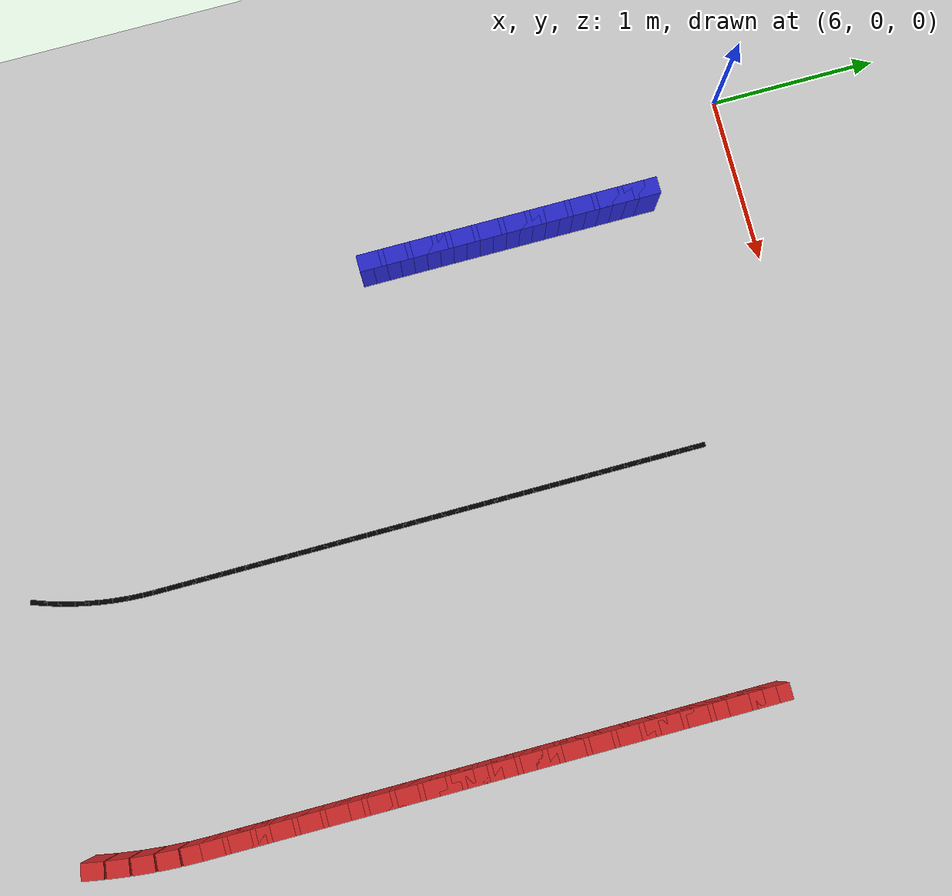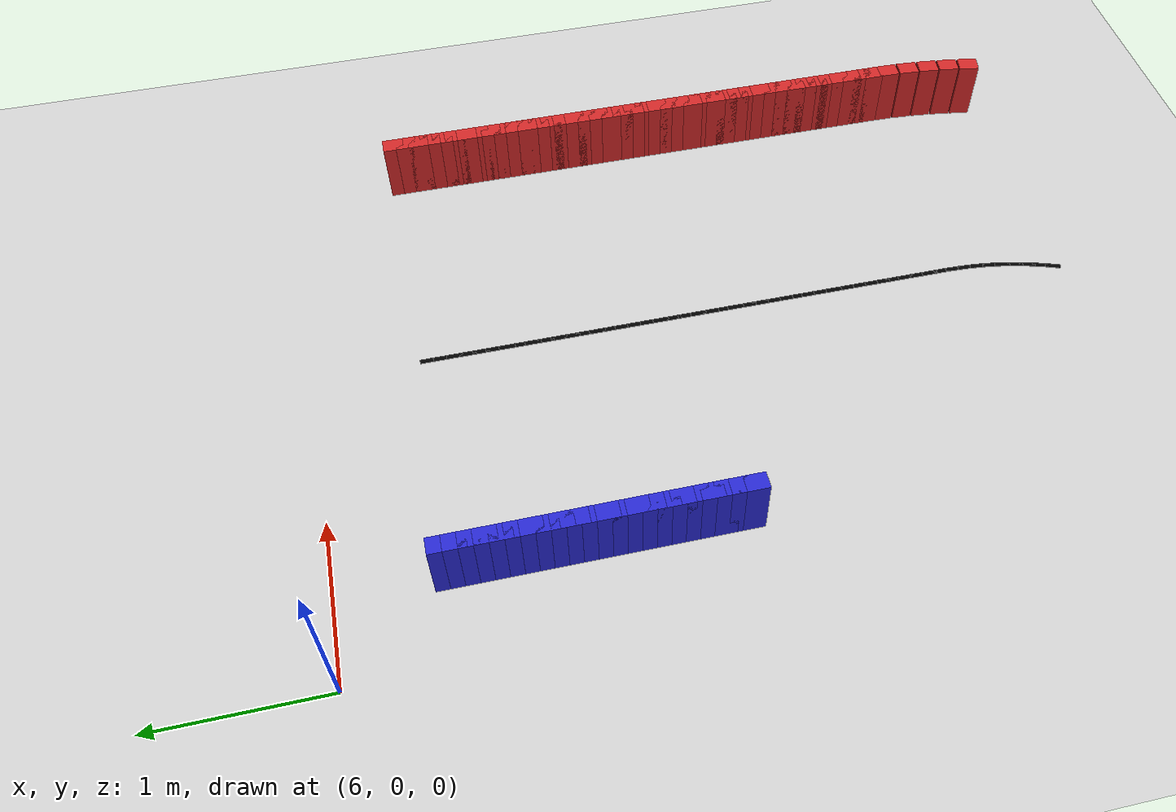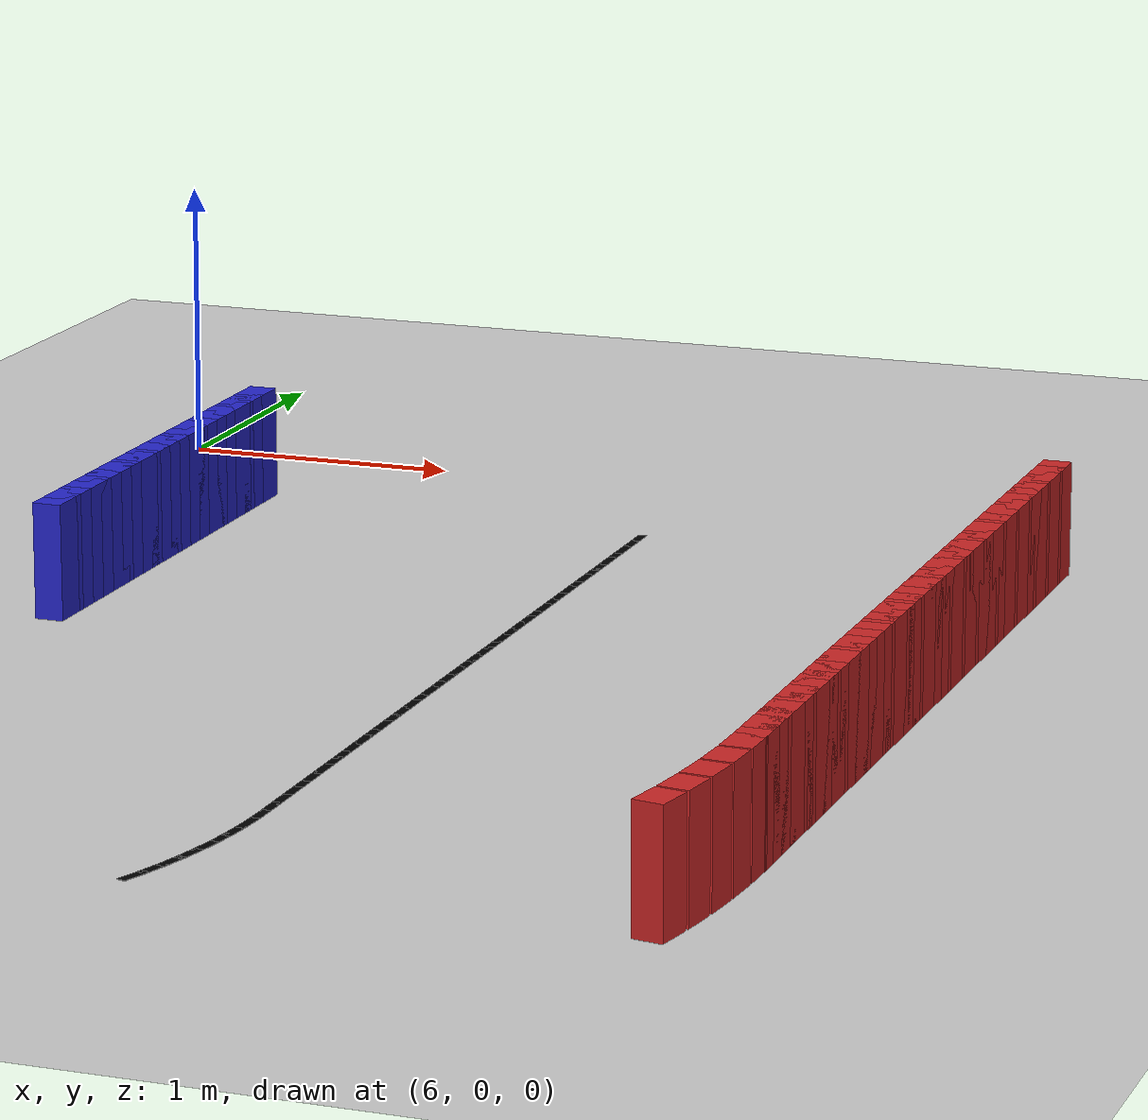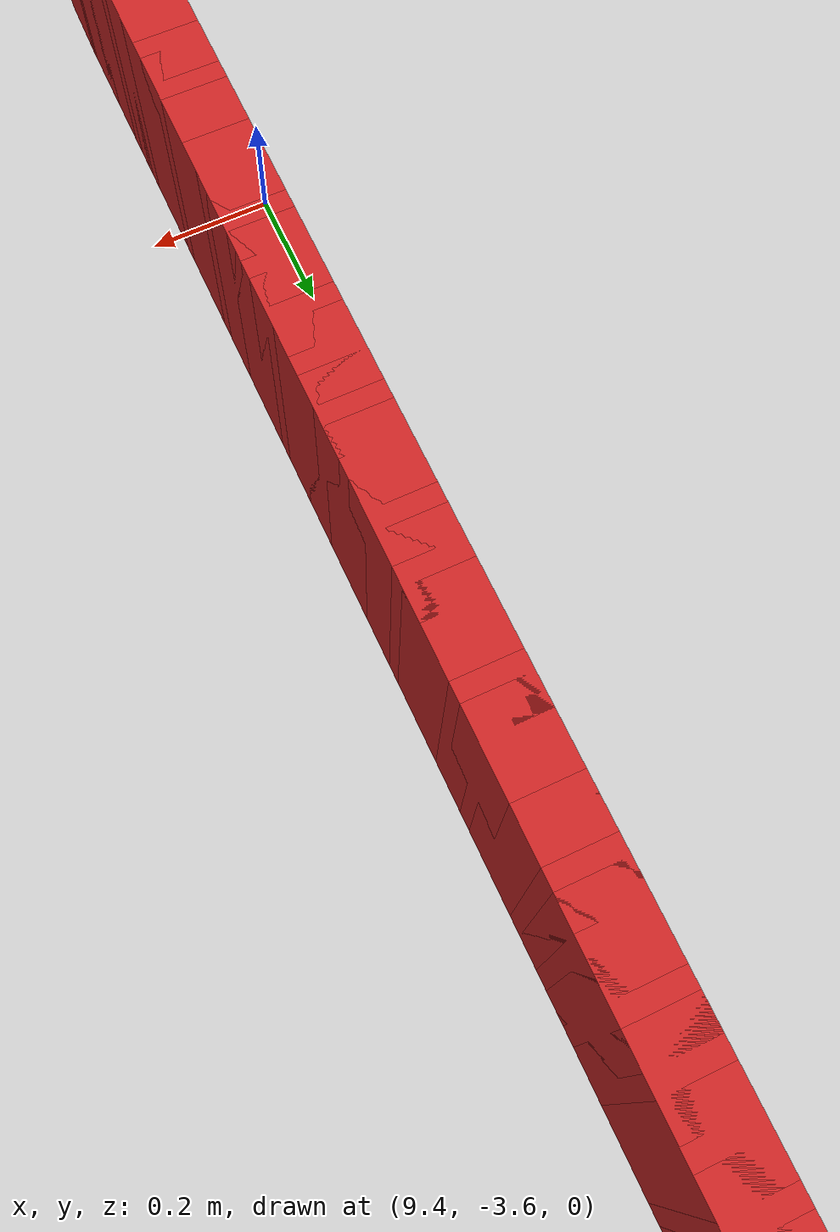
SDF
<sdf version="1.6">
 <world name="new_race_track">
  <include><uri>model://ground_plane</uri></include>
  <include><uri>model://sun</uri></include>
  <model name="iw_417">
   <static>true</static>
   <pose>6.5000 -2.2800 0.200 0 0 1.5708</pose>
   <link name="l">
    <collision name="c"><geometry><box><size>0.1300 0.1 0.4</size></box></geometry></collision>
    <visual name="v">
     <geometry><box><size>0.1300 0.1 0.4</size></box></geometry>
     <material><ambient>0.15 0.15 0.8 1</ambient><diffuse>0.15 0.15 0.8 1</diffuse></material>
    </visual>
   </link>
  </model>
  <model name="iw_418">
   <static>true</static>
   <pose>6.5000 -2.2000 0.200 0 0 1.5708</pose>
   <link name="l">
    <collision name="c"><geometry><box><size>0.1300 0.1 0.4</size></box></geometry></collision>
    <visual name="v">
     <geometry><box><size>0.1300 0.1 0.4</size></box></geometry>
     <material><ambient>0.15 0.15 0.8 1</ambient><diffuse>0.15 0.15 0.8 1</diffuse></material>
    </visual>
   </link>
  </model>
  <model name="iw_419">
   <static>true</static>
   <pose>6.5000 -2.1200 0.200 0 0 1.5708</pose>
   <link name="l">
    <collision name="c"><geometry><box><size>0.1300 0.1 0.4</size></box></geometry></collision>
    <visual name="v">
     <geometry><box><size>0.1300 0.1 0.4</size></box></geometry>
     <material><ambient>0.15 0.15 0.8 1</ambient><diffuse>0.15 0.15 0.8 1</diffuse></material>
    </visual>
   </link>
  </model>
  <model name="iw_420">
   <static>true</static>
   <pose>6.5000 -2.0400 0.200 0 0 1.5708</pose>
   <link name="l">
    <collision name="c"><geometry><box><size>0.1300 0.1 0.4</size></box></geometry></collision>
    <visual name="v">
     <geometry><box><size>0.1300 0.1 0.4</size></box></geometry>
     <material><ambient>0.15 0.15 0.8 1</ambient><diffuse>0.15 0.15 0.8 1</diffuse></material>
    </visual>
   </link>
  </model>
  <model name="iw_421">
   <static>true</static>
   <pose>6.5000 -1.9600 0.200 0 0 1.5708</pose>
   <link name="l">
    <collision name="c"><geometry><box><size>0.1300 0.1 0.4</size></box></geometry></collision>
    <visual name="v">
     <geometry><box><size>0.1300 0.1 0.4</size></box></geometry>
     <material><ambient>0.15 0.15 0.8 1</ambient><diffuse>0.15 0.15 0.8 1</diffuse></material>
    </visual>
   </link>
  </model>
  <model name="iw_422">
   <static>true</static>
   <pose>6.5000 -1.8800 0.200 0 0 1.5708</pose>
   <link name="l">
    <collision name="c"><geometry><box><size>0.1300 0.1 0.4</size></box></geometry></collision>
    <visual name="v">
     <geometry><box><size>0.1300 0.1 0.4</size></box></geometry>
     <material><ambient>0.15 0.15 0.8 1</ambient><diffuse>0.15 0.15 0.8 1</diffuse></material>
    </visual>
   </link>
  </model>
  <model name="iw_423">
   <static>true</static>
   <pose>6.5000 -1.8000 0.200 0 0 1.5708</pose>
   <link name="l">
    <collision name="c"><geometry><box><size>0.1300 0.1 0.4</size></box></geometry></collision>
    <visual name="v">
     <geometry><box><size>0.1300 0.1 0.4</size></box></geometry>
     <material><ambient>0.15 0.15 0.8 1</ambient><diffuse>0.15 0.15 0.8 1</diffuse></material>
    </visual>
   </link>
  </model>
  <model name="iw_424">
   <static>true</static>
   <pose>6.5000 -1.7200 0.200 0 0 1.5708</pose>
   <link name="l">
    <collision name="c"><geometry><box><size>0.1300 0.1 0.4</size></box></geometry></collision>
    <visual name="v">
     <geometry><box><size>0.1300 0.1 0.4</size></box></geometry>
     <material><ambient>0.15 0.15 0.8 1</ambient><diffuse>0.15 0.15 0.8 1</diffuse></material>
    </visual>
   </link>
  </model>
  <model name="iw_425">
   <static>true</static>
   <pose>6.5000 -1.6400 0.200 0 0 1.5708</pose>
   <link name="l">
    <collision name="c"><geometry><box><size>0.1300 0.1 0.4</size></box></geometry></collision>
    <visual name="v">
     <geometry><box><size>0.1300 0.1 0.4</size></box></geometry>
     <material><ambient>0.15 0.15 0.8 1</ambient><diffuse>0.15 0.15 0.8 1</diffuse></material>
    </visual>
   </link>
  </model>
  <model name="iw_426">
   <static>true</static>
   <pose>6.5000 -1.5600 0.200 0 0 1.5708</pose>
   <link name="l">
    <collision name="c"><geometry><box><size>0.1300 0.1 0.4</size></box></geometry></collision>
    <visual name="v">
     <geometry><box><size>0.1300 0.1 0.4</size></box></geometry>
     <material><ambient>0.15 0.15 0.8 1</ambient><diffuse>0.15 0.15 0.8 1</diffuse></material>
    </visual>
   </link>
  </model>
  <model name="iw_427">
   <static>true</static>
   <pose>6.5000 -1.4800 0.200 0 0 1.5708</pose>
   <link name="l">
    <collision name="c"><geometry><box><size>0.1300 0.1 0.4</size></box></geometry></collision>
    <visual name="v">
     <geometry><box><size>0.1300 0.1 0.4</size></box></geometry>
     <material><ambient>0.15 0.15 0.8 1</ambient><diffuse>0.15 0.15 0.8 1</diffuse></material>
    </visual>
   </link>
  </model>
  <model name="iw_428">
   <static>true</static>
   <pose>6.5000 -1.4000 0.200 0 0 1.5708</pose>
   <link name="l">
    <collision name="c"><geometry><box><size>0.1300 0.1 0.4</size></box></geometry></collision>
    <visual name="v">
     <geometry><box><size>0.1300 0.1 0.4</size></box></geometry>
     <material><ambient>0.15 0.15 0.8 1</ambient><diffuse>0.15 0.15 0.8 1</diffuse></material>
    </visual>
   </link>
  </model>
  <model name="iw_429">
   <static>true</static>
   <pose>6.5000 -1.3200 0.200 0 0 1.5708</pose>
   <link name="l">
    <collision name="c"><geometry><box><size>0.1300 0.1 0.4</size></box></geometry></collision>
    <visual name="v">
     <geometry><box><size>0.1300 0.1 0.4</size></box></geometry>
     <material><ambient>0.15 0.15 0.8 1</ambient><diffuse>0.15 0.15 0.8 1</diffuse></material>
    </visual>
   </link>
  </model>
  <model name="iw_430">
   <static>true</static>
   <pose>6.5000 -1.2400 0.200 0 0 1.5708</pose>
   <link name="l">
    <collision name="c"><geometry><box><size>0.1300 0.1 0.4</size></box></geometry></collision>
    <visual name="v">
     <geometry><box><size>0.1300 0.1 0.4</size></box></geometry>
     <material><ambient>0.15 0.15 0.8 1</ambient><diffuse>0.15 0.15 0.8 1</diffuse></material>
    </visual>
   </link>
  </model>
  <model name="iw_431">
   <static>true</static>
   <pose>6.5000 -1.1600 0.200 0 0 1.5708</pose>
   <link name="l">
    <collision name="c"><geometry><box><size>0.1300 0.1 0.4</size></box></geometry></collision>
    <visual name="v">
     <geometry><box><size>0.1300 0.1 0.4</size></box></geometry>
     <material><ambient>0.15 0.15 0.8 1</ambient><diffuse>0.15 0.15 0.8 1</diffuse></material>
    </visual>
   </link>
  </model>
  <model name="iw_432">
   <static>true</static>
   <pose>6.5000 -1.0800 0.200 0 0 1.5708</pose>
   <link name="l">
    <collision name="c"><geometry><box><size>0.1300 0.1 0.4</size></box></geometry></collision>
    <visual name="v">
     <geometry><box><size>0.1300 0.1 0.4</size></box></geometry>
     <material><ambient>0.15 0.15 0.8 1</ambient><diffuse>0.15 0.15 0.8 1</diffuse></material>
    </visual>
   </link>
  </model>
  <model name="iw_433">
   <static>true</static>
   <pose>6.5000 -1.0000 0.200 0 0 1.5708</pose>
   <link name="l">
    <collision name="c"><geometry><box><size>0.1300 0.1 0.4</size></box></geometry></collision>
    <visual name="v">
     <geometry><box><size>0.1300 0.1 0.4</size></box></geometry>
     <material><ambient>0.15 0.15 0.8 1</ambient><diffuse>0.15 0.15 0.8 1</diffuse></material>
    </visual>
   </link>
  </model>
  <model name="iw_434">
   <static>true</static>
   <pose>6.5000 -0.9200 0.200 0 0 1.5708</pose>
   <link name="l">
    <collision name="c"><geometry><box><size>0.1300 0.1 0.4</size></box></geometry></collision>
    <visual name="v">
     <geometry><box><size>0.1300 0.1 0.4</size></box></geometry>
     <material><ambient>0.15 0.15 0.8 1</ambient><diffuse>0.15 0.15 0.8 1</diffuse></material>
    </visual>
   </link>
  </model>
  <model name="iw_435">
   <static>true</static>
   <pose>6.5000 -0.8400 0.200 0 0 1.5708</pose>
   <link name="l">
    <collision name="c"><geometry><box><size>0.1300 0.1 0.4</size></box></geometry></collision>
    <visual name="v">
     <geometry><box><size>0.1300 0.1 0.4</size></box></geometry>
     <material><ambient>0.15 0.15 0.8 1</ambient><diffuse>0.15 0.15 0.8 1</diffuse></material>
    </visual>
   </link>
  </model>
  <model name="iw_436">
   <static>true</static>
   <pose>6.5000 -0.7600 0.200 0 0 1.5708</pose>
   <link name="l">
    <collision name="c"><geometry><box><size>0.1300 0.1 0.4</size></box></geometry></collision>
    <visual name="v">
     <geometry><box><size>0.1300 0.1 0.4</size></box></geometry>
     <material><ambient>0.15 0.15 0.8 1</ambient><diffuse>0.15 0.15 0.8 1</diffuse></material>
    </visual>
   </link>
  </model>
  <model name="iw_437">
   <static>true</static>
   <pose>6.5000 -0.6800 0.200 0 0 1.5708</pose>
   <link name="l">
    <collision name="c"><geometry><box><size>0.1300 0.1 0.4</size></box></geometry></collision>
    <visual name="v">
     <geometry><box><size>0.1300 0.1 0.4</size></box></geometry>
     <material><ambient>0.15 0.15 0.8 1</ambient><diffuse>0.15 0.15 0.8 1</diffuse></material>
    </visual>
   </link>
  </model>
  <model name="iw_438">
   <static>true</static>
   <pose>6.5000 -0.6000 0.200 0 0 1.5708</pose>
   <link name="l">
    <collision name="c"><geometry><box><size>0.1300 0.1 0.4</size></box></geometry></collision>
    <visual name="v">
     <geometry><box><size>0.1300 0.1 0.4</size></box></geometry>
     <material><ambient>0.15 0.15 0.8 1</ambient><diffuse>0.15 0.15 0.8 1</diffuse></material>
    </visual>
   </link>
  </model>
  <model name="ow_391">
   <static>true</static>
   <pose>9.4423 -4.6308 0.200 0 0 1.3896</pose>
   <link name="l">
    <collision name="c"><geometry><box><size>0.1305 0.1 0.4</size></box></geometry></collision>
    <visual name="v">
     <geometry><box><size>0.1305 0.1 0.4</size></box></geometry>
     <material><ambient>0.8 0.15 0.15 1</ambient><diffuse>0.8 0.15 0.15 1</diffuse></material>
    </visual>
   </link>
  </model>
  <model name="ow_392">
   <static>true</static>
   <pose>9.4649 -4.4917 0.200 0 0 1.4298</pose>
   <link name="l">
    <collision name="c"><geometry><box><size>0.1305 0.1 0.4</size></box></geometry></collision>
    <visual name="v">
     <geometry><box><size>0.1305 0.1 0.4</size></box></geometry>
     <material><ambient>0.8 0.15 0.15 1</ambient><diffuse>0.8 0.15 0.15 1</diffuse></material>
    </visual>
   </link>
  </model>
  <model name="ow_393">
   <static>true</static>
   <pose>9.4819 -4.3518 0.200 0 0 1.4701</pose>
   <link name="l">
    <collision name="c"><geometry><box><size>0.1305 0.1 0.4</size></box></geometry></collision>
    <visual name="v">
     <geometry><box><size>0.1305 0.1 0.4</size></box></geometry>
     <material><ambient>0.8 0.15 0.15 1</ambient><diffuse>0.8 0.15 0.15 1</diffuse></material>
    </visual>
   </link>
  </model>
  <model name="ow_394">
   <static>true</static>
   <pose>9.4932 -4.2113 0.200 0 0 1.5104</pose>
   <link name="l">
    <collision name="c"><geometry><box><size>0.1305 0.1 0.4</size></box></geometry></collision>
    <visual name="v">
     <geometry><box><size>0.1305 0.1 0.4</size></box></geometry>
     <material><ambient>0.8 0.15 0.15 1</ambient><diffuse>0.8 0.15 0.15 1</diffuse></material>
    </visual>
   </link>
  </model>
  <model name="ow_395">
   <static>true</static>
   <pose>9.4989 -4.0705 0.200 0 0 1.5507</pose>
   <link name="l">
    <collision name="c"><geometry><box><size>0.1305 0.1 0.4</size></box></geometry></collision>
    <visual name="v">
     <geometry><box><size>0.1305 0.1 0.4</size></box></geometry>
     <material><ambient>0.8 0.15 0.15 1</ambient><diffuse>0.8 0.15 0.15 1</diffuse></material>
    </visual>
   </link>
  </model>
  <model name="ow_396">
   <static>true</static>
   <pose>9.5000 -3.9600 0.200 0 0 1.5708</pose>
   <link name="l">
    <collision name="c"><geometry><box><size>0.1300 0.1 0.4</size></box></geometry></collision>
    <visual name="v">
     <geometry><box><size>0.1300 0.1 0.4</size></box></geometry>
     <material><ambient>0.8 0.15 0.15 1</ambient><diffuse>0.8 0.15 0.15 1</diffuse></material>
    </visual>
   </link>
  </model>
  <model name="ow_397">
   <static>true</static>
   <pose>9.5000 -3.8800 0.200 0 0 1.5708</pose>
   <link name="l">
    <collision name="c"><geometry><box><size>0.1300 0.1 0.4</size></box></geometry></collision>
    <visual name="v">
     <geometry><box><size>0.1300 0.1 0.4</size></box></geometry>
     <material><ambient>0.8 0.15 0.15 1</ambient><diffuse>0.8 0.15 0.15 1</diffuse></material>
    </visual>
   </link>
  </model>
  <model name="ow_398">
   <static>true</static>
   <pose>9.5000 -3.8000 0.200 0 0 1.5708</pose>
   <link name="l">
    <collision name="c"><geometry><box><size>0.1300 0.1 0.4</size></box></geometry></collision>
    <visual name="v">
     <geometry><box><size>0.1300 0.1 0.4</size></box></geometry>
     <material><ambient>0.8 0.15 0.15 1</ambient><diffuse>0.8 0.15 0.15 1</diffuse></material>
    </visual>
   </link>
  </model>
  <model name="ow_399">
   <static>true</static>
   <pose>9.5000 -3.7200 0.200 0 0 1.5708</pose>
   <link name="l">
    <collision name="c"><geometry><box><size>0.1300 0.1 0.4</size></box></geometry></collision>
    <visual name="v">
     <geometry><box><size>0.1300 0.1 0.4</size></box></geometry>
     <material><ambient>0.8 0.15 0.15 1</ambient><diffuse>0.8 0.15 0.15 1</diffuse></material>
    </visual>
   </link>
  </model>
  <model name="ow_400">
   <static>true</static>
   <pose>9.5000 -3.6400 0.200 0 0 1.5708</pose>
   <link name="l">
    <collision name="c"><geometry><box><size>0.1300 0.1 0.4</size></box></geometry></collision>
    <visual name="v">
     <geometry><box><size>0.1300 0.1 0.4</size></box></geometry>
     <material><ambient>0.8 0.15 0.15 1</ambient><diffuse>0.8 0.15 0.15 1</diffuse></material>
    </visual>
   </link>
  </model>
  <model name="ow_401">
   <static>true</static>
   <pose>9.5000 -3.5600 0.200 0 0 1.5708</pose>
   <link name="l">
    <collision name="c"><geometry><box><size>0.1300 0.1 0.4</size></box></geometry></collision>
    <visual name="v">
     <geometry><box><size>0.1300 0.1 0.4</size></box></geometry>
     <material><ambient>0.8 0.15 0.15 1</ambient><diffuse>0.8 0.15 0.15 1</diffuse></material>
    </visual>
   </link>
  </model>
  <model name="ow_402">
   <static>true</static>
   <pose>9.5000 -3.4800 0.200 0 0 1.5708</pose>
   <link name="l">
    <collision name="c"><geometry><box><size>0.1300 0.1 0.4</size></box></geometry></collision>
    <visual name="v">
     <geometry><box><size>0.1300 0.1 0.4</size></box></geometry>
     <material><ambient>0.8 0.15 0.15 1</ambient><diffuse>0.8 0.15 0.15 1</diffuse></material>
    </visual>
   </link>
  </model>
  <model name="ow_403">
   <static>true</static>
   <pose>9.5000 -3.4000 0.200 0 0 1.5708</pose>
   <link name="l">
    <collision name="c"><geometry><box><size>0.1300 0.1 0.4</size></box></geometry></collision>
    <visual name="v">
     <geometry><box><size>0.1300 0.1 0.4</size></box></geometry>
     <material><ambient>0.8 0.15 0.15 1</ambient><diffuse>0.8 0.15 0.15 1</diffuse></material>
    </visual>
   </link>
  </model>
  <model name="ow_404">
   <static>true</static>
   <pose>9.5000 -3.3200 0.200 0 0 1.5708</pose>
   <link name="l">
    <collision name="c"><geometry><box><size>0.1300 0.1 0.4</size></box></geometry></collision>
    <visual name="v">
     <geometry><box><size>0.1300 0.1 0.4</size></box></geometry>
     <material><ambient>0.8 0.15 0.15 1</ambient><diffuse>0.8 0.15 0.15 1</diffuse></material>
    </visual>
   </link>
  </model>
  <model name="ow_405">
   <static>true</static>
   <pose>9.5000 -3.2400 0.200 0 0 1.5708</pose>
   <link name="l">
    <collision name="c"><geometry><box><size>0.1300 0.1 0.4</size></box></geometry></collision>
    <visual name="v">
     <geometry><box><size>0.1300 0.1 0.4</size></box></geometry>
     <material><ambient>0.8 0.15 0.15 1</ambient><diffuse>0.8 0.15 0.15 1</diffuse></material>
    </visual>
   </link>
  </model>
  <model name="ow_406">
   <static>true</static>
   <pose>9.5000 -3.1600 0.200 0 0 1.5708</pose>
   <link name="l">
    <collision name="c"><geometry><box><size>0.1300 0.1 0.4</size></box></geometry></collision>
    <visual name="v">
     <geometry><box><size>0.1300 0.1 0.4</size></box></geometry>
     <material><ambient>0.8 0.15 0.15 1</ambient><diffuse>0.8 0.15 0.15 1</diffuse></material>
    </visual>
   </link>
  </model>
  <model name="ow_407">
   <static>true</static>
   <pose>9.5000 -3.0800 0.200 0 0 1.5708</pose>
   <link name="l">
    <collision name="c"><geometry><box><size>0.1300 0.1 0.4</size></box></geometry></collision>
    <visual name="v">
     <geometry><box><size>0.1300 0.1 0.4</size></box></geometry>
     <material><ambient>0.8 0.15 0.15 1</ambient><diffuse>0.8 0.15 0.15 1</diffuse></material>
    </visual>
   </link>
  </model>
  <model name="ow_408">
   <static>true</static>
   <pose>9.5000 -3.0000 0.200 0 0 1.5708</pose>
   <link name="l">
    <collision name="c"><geometry><box><size>0.1300 0.1 0.4</size></box></geometry></collision>
    <visual name="v">
     <geometry><box><size>0.1300 0.1 0.4</size></box></geometry>
     <material><ambient>0.8 0.15 0.15 1</ambient><diffuse>0.8 0.15 0.15 1</diffuse></material>
    </visual>
   </link>
  </model>
  <model name="ow_409">
   <static>true</static>
   <pose>9.5000 -2.9200 0.200 0 0 1.5708</pose>
   <link name="l">
    <collision name="c"><geometry><box><size>0.1300 0.1 0.4</size></box></geometry></collision>
    <visual name="v">
     <geometry><box><size>0.1300 0.1 0.4</size></box></geometry>
     <material><ambient>0.8 0.15 0.15 1</ambient><diffuse>0.8 0.15 0.15 1</diffuse></material>
    </visual>
   </link>
  </model>
  <model name="ow_410">
   <static>true</static>
   <pose>9.5000 -2.8400 0.200 0 0 1.5708</pose>
   <link name="l">
    <collision name="c"><geometry><box><size>0.1300 0.1 0.4</size></box></geometry></collision>
    <visual name="v">
     <geometry><box><size>0.1300 0.1 0.4</size></box></geometry>
     <material><ambient>0.8 0.15 0.15 1</ambient><diffuse>0.8 0.15 0.15 1</diffuse></material>
    </visual>
   </link>
  </model>
  <model name="ow_411">
   <static>true</static>
   <pose>9.5000 -2.7600 0.200 0 0 1.5708</pose>
   <link name="l">
    <collision name="c"><geometry><box><size>0.1300 0.1 0.4</size></box></geometry></collision>
    <visual name="v">
     <geometry><box><size>0.1300 0.1 0.4</size></box></geometry>
     <material><ambient>0.8 0.15 0.15 1</ambient><diffuse>0.8 0.15 0.15 1</diffuse></material>
    </visual>
   </link>
  </model>
  <model name="ow_412">
   <static>true</static>
   <pose>9.5000 -2.6800 0.200 0 0 1.5708</pose>
   <link name="l">
    <collision name="c"><geometry><box><size>0.1300 0.1 0.4</size></box></geometry></collision>
    <visual name="v">
     <geometry><box><size>0.1300 0.1 0.4</size></box></geometry>
     <material><ambient>0.8 0.15 0.15 1</ambient><diffuse>0.8 0.15 0.15 1</diffuse></material>
    </visual>
   </link>
  </model>
  <model name="ow_413">
   <static>true</static>
   <pose>9.5000 -2.6000 0.200 0 0 1.5708</pose>
   <link name="l">
    <collision name="c"><geometry><box><size>0.1300 0.1 0.4</size></box></geometry></collision>
    <visual name="v">
     <geometry><box><size>0.1300 0.1 0.4</size></box></geometry>
     <material><ambient>0.8 0.15 0.15 1</ambient><diffuse>0.8 0.15 0.15 1</diffuse></material>
    </visual>
   </link>
  </model>
  <model name="ow_414">
   <static>true</static>
   <pose>9.5000 -2.5200 0.200 0 0 1.5708</pose>
   <link name="l">
    <collision name="c"><geometry><box><size>0.1300 0.1 0.4</size></box></geometry></collision>
    <visual name="v">
     <geometry><box><size>0.1300 0.1 0.4</size></box></geometry>
     <material><ambient>0.8 0.15 0.15 1</ambient><diffuse>0.8 0.15 0.15 1</diffuse></material>
    </visual>
   </link>
  </model>
  <model name="ow_415">
   <static>true</static>
   <pose>9.5000 -2.4400 0.200 0 0 1.5708</pose>
   <link name="l">
    <collision name="c"><geometry><box><size>0.1300 0.1 0.4</size></box></geometry></collision>
    <visual name="v">
     <geometry><box><size>0.1300 0.1 0.4</size></box></geometry>
     <material><ambient>0.8 0.15 0.15 1</ambient><diffuse>0.8 0.15 0.15 1</diffuse></material>
    </visual>
   </link>
  </model>
  <model name="ow_416">
   <static>true</static>
   <pose>9.5000 -2.3600 0.200 0 0 1.5708</pose>
   <link name="l">
    <collision name="c"><geometry><box><size>0.1300 0.1 0.4</size></box></geometry></collision>
    <visual name="v">
     <geometry><box><size>0.1300 0.1 0.4</size></box></geometry>
     <material><ambient>0.8 0.15 0.15 1</ambient><diffuse>0.8 0.15 0.15 1</diffuse></material>
    </visual>
   </link>
  </model>
  <model name="ow_417">
   <static>true</static>
   <pose>9.5000 -2.2800 0.200 0 0 1.5708</pose>
   <link name="l">
    <collision name="c"><geometry><box><size>0.1300 0.1 0.4</size></box></geometry></collision>
    <visual name="v">
     <geometry><box><size>0.1300 0.1 0.4</size></box></geometry>
     <material><ambient>0.8 0.15 0.15 1</ambient><diffuse>0.8 0.15 0.15 1</diffuse></material>
    </visual>
   </link>
  </model>
  <model name="ow_418">
   <static>true</static>
   <pose>9.5000 -2.2000 0.200 0 0 1.5708</pose>
   <link name="l">
    <collision name="c"><geometry><box><size>0.1300 0.1 0.4</size></box></geometry></collision>
    <visual name="v">
     <geometry><box><size>0.1300 0.1 0.4</size></box></geometry>
     <material><ambient>0.8 0.15 0.15 1</ambient><diffuse>0.8 0.15 0.15 1</diffuse></material>
    </visual>
   </link>
  </model>
  <model name="ow_419">
   <static>true</static>
   <pose>9.5000 -2.1200 0.200 0 0 1.5708</pose>
   <link name="l">
    <collision name="c"><geometry><box><size>0.1300 0.1 0.4</size></box></geometry></collision>
    <visual name="v">
     <geometry><box><size>0.1300 0.1 0.4</size></box></geometry>
     <material><ambient>0.8 0.15 0.15 1</ambient><diffuse>0.8 0.15 0.15 1</diffuse></material>
    </visual>
   </link>
  </model>
  <model name="ow_420">
   <static>true</static>
   <pose>9.5000 -2.0400 0.200 0 0 1.5708</pose>
   <link name="l">
    <collision name="c"><geometry><box><size>0.1300 0.1 0.4</size></box></geometry></collision>
    <visual name="v">
     <geometry><box><size>0.1300 0.1 0.4</size></box></geometry>
     <material><ambient>0.8 0.15 0.15 1</ambient><diffuse>0.8 0.15 0.15 1</diffuse></material>
    </visual>
   </link>
  </model>
  <model name="ow_421">
   <static>true</static>
   <pose>9.5000 -1.9600 0.200 0 0 1.5708</pose>
   <link name="l">
    <collision name="c"><geometry><box><size>0.1300 0.1 0.4</size></box></geometry></collision>
    <visual name="v">
     <geometry><box><size>0.1300 0.1 0.4</size></box></geometry>
     <material><ambient>0.8 0.15 0.15 1</ambient><diffuse>0.8 0.15 0.15 1</diffuse></material>
    </visual>
   </link>
  </model>
  <model name="ow_422">
   <static>true</static>
   <pose>9.5000 -1.8800 0.200 0 0 1.5708</pose>
   <link name="l">
    <collision name="c"><geometry><box><size>0.1300 0.1 0.4</size></box></geometry></collision>
    <visual name="v">
     <geometry><box><size>0.1300 0.1 0.4</size></box></geometry>
     <material><ambient>0.8 0.15 0.15 1</ambient><diffuse>0.8 0.15 0.15 1</diffuse></material>
    </visual>
   </link>
  </model>
  <model name="ow_423">
   <static>true</static>
   <pose>9.5000 -1.8000 0.200 0 0 1.5708</pose>
   <link name="l">
    <collision name="c"><geometry><box><size>0.1300 0.1 0.4</size></box></geometry></collision>
    <visual name="v">
     <geometry><box><size>0.1300 0.1 0.4</size></box></geometry>
     <material><ambient>0.8 0.15 0.15 1</ambient><diffuse>0.8 0.15 0.15 1</diffuse></material>
    </visual>
   </link>
  </model>
  <model name="ow_424">
   <static>true</static>
   <pose>9.5000 -1.7200 0.200 0 0 1.5708</pose>
   <link name="l">
    <collision name="c"><geometry><box><size>0.1300 0.1 0.4</size></box></geometry></collision>
    <visual name="v">
     <geometry><box><size>0.1300 0.1 0.4</size></box></geometry>
     <material><ambient>0.8 0.15 0.15 1</ambient><diffuse>0.8 0.15 0.15 1</diffuse></material>
    </visual>
   </link>
  </model>
  <model name="ow_425">
   <static>true</static>
   <pose>9.5000 -1.6400 0.200 0 0 1.5708</pose>
   <link name="l">
    <collision name="c"><geometry><box><size>0.1300 0.1 0.4</size></box></geometry></collision>
    <visual name="v">
     <geometry><box><size>0.1300 0.1 0.4</size></box></geometry>
     <material><ambient>0.8 0.15 0.15 1</ambient><diffuse>0.8 0.15 0.15 1</diffuse></material>
    </visual>
   </link>
  </model>
  <model name="ow_426">
   <static>true</static>
   <pose>9.5000 -1.5600 0.200 0 0 1.5708</pose>
   <link name="l">
    <collision name="c"><geometry><box><size>0.1300 0.1 0.4</size></box></geometry></collision>
    <visual name="v">
     <geometry><box><size>0.1300 0.1 0.4</size></box></geometry>
     <material><ambient>0.8 0.15 0.15 1</ambient><diffuse>0.8 0.15 0.15 1</diffuse></material>
    </visual>
   </link>
  </model>
  <model name="ow_427">
   <static>true</static>
   <pose>9.5000 -1.4800 0.200 0 0 1.5708</pose>
   <link name="l">
    <collision name="c"><geometry><box><size>0.1300 0.1 0.4</size></box></geometry></collision>
    <visual name="v">
     <geometry><box><size>0.1300 0.1 0.4</size></box></geometry>
     <material><ambient>0.8 0.15 0.15 1</ambient><diffuse>0.8 0.15 0.15 1</diffuse></material>
    </visual>
   </link>
  </model>
  <model name="ow_428">
   <static>true</static>
   <pose>9.5000 -1.4000 0.200 0 0 1.5708</pose>
   <link name="l">
    <collision name="c"><geometry><box><size>0.1300 0.1 0.4</size></box></geometry></collision>
    <visual name="v">
     <geometry><box><size>0.1300 0.1 0.4</size></box></geometry>
     <material><ambient>0.8 0.15 0.15 1</ambient><diffuse>0.8 0.15 0.15 1</diffuse></material>
    </visual>
   </link>
  </model>
  <model name="ow_429">
   <static>true</static>
   <pose>9.5000 -1.3200 0.200 0 0 1.5708</pose>
   <link name="l">
    <collision name="c"><geometry><box><size>0.1300 0.1 0.4</size></box></geometry></collision>
    <visual name="v">
     <geometry><box><size>0.1300 0.1 0.4</size></box></geometry>
     <material><ambient>0.8 0.15 0.15 1</ambient><diffuse>0.8 0.15 0.15 1</diffuse></material>
    </visual>
   </link>
  </model>
  <model name="ow_430">
   <static>true</static>
   <pose>9.5000 -1.2400 0.200 0 0 1.5708</pose>
   <link name="l">
    <collision name="c"><geometry><box><size>0.1300 0.1 0.4</size></box></geometry></collision>
    <visual name="v">
     <geometry><box><size>0.1300 0.1 0.4</size></box></geometry>
     <material><ambient>0.8 0.15 0.15 1</ambient><diffuse>0.8 0.15 0.15 1</diffuse></material>
    </visual>
   </link>
  </model>
  <model name="ow_431">
   <static>true</static>
   <pose>9.5000 -1.1600 0.200 0 0 1.5708</pose>
   <link name="l">
    <collision name="c"><geometry><box><size>0.1300 0.1 0.4</size></box></geometry></collision>
    <visual name="v">
     <geometry><box><size>0.1300 0.1 0.4</size></box></geometry>
     <material><ambient>0.8 0.15 0.15 1</ambient><diffuse>0.8 0.15 0.15 1</diffuse></material>
    </visual>
   </link>
  </model>
  <model name="ow_432">
   <static>true</static>
   <pose>9.5000 -1.0800 0.200 0 0 1.5708</pose>
   <link name="l">
    <collision name="c"><geometry><box><size>0.1300 0.1 0.4</size></box></geometry></collision>
    <visual name="v">
     <geometry><box><size>0.1300 0.1 0.4</size></box></geometry>
     <material><ambient>0.8 0.15 0.15 1</ambient><diffuse>0.8 0.15 0.15 1</diffuse></material>
    </visual>
   </link>
  </model>
  <model name="ow_433">
   <static>true</static>
   <pose>9.5000 -1.0000 0.200 0 0 1.5708</pose>
   <link name="l">
    <collision name="c"><geometry><box><size>0.1300 0.1 0.4</size></box></geometry></collision>
    <visual name="v">
     <geometry><box><size>0.1300 0.1 0.4</size></box></geometry>
     <material><ambient>0.8 0.15 0.15 1</ambient><diffuse>0.8 0.15 0.15 1</diffuse></material>
    </visual>
   </link>
  </model>
  <model name="ow_434">
   <static>true</static>
   <pose>9.5000 -0.9200 0.200 0 0 1.5708</pose>
   <link name="l">
    <collision name="c"><geometry><box><size>0.1300 0.1 0.4</size></box></geometry></collision>
    <visual name="v">
     <geometry><box><size>0.1300 0.1 0.4</size></box></geometry>
     <material><ambient>0.8 0.15 0.15 1</ambient><diffuse>0.8 0.15 0.15 1</diffuse></material>
    </visual>
   </link>
  </model>
  <model name="ow_435">
   <static>true</static>
   <pose>9.5000 -0.8400 0.200 0 0 1.5708</pose>
   <link name="l">
    <collision name="c"><geometry><box><size>0.1300 0.1 0.4</size></box></geometry></collision>
    <visual name="v">
     <geometry><box><size>0.1300 0.1 0.4</size></box></geometry>
     <material><ambient>0.8 0.15 0.15 1</ambient><diffuse>0.8 0.15 0.15 1</diffuse></material>
    </visual>
   </link>
  </model>
  <model name="ow_436">
   <static>true</static>
   <pose>9.5000 -0.7600 0.200 0 0 1.5708</pose>
   <link name="l">
    <collision name="c"><geometry><box><size>0.1300 0.1 0.4</size></box></geometry></collision>
    <visual name="v">
     <geometry><box><size>0.1300 0.1 0.4</size></box></geometry>
     <material><ambient>0.8 0.15 0.15 1</ambient><diffuse>0.8 0.15 0.15 1</diffuse></material>
    </visual>
   </link>
  </model>
  <model name="ow_437">
   <static>true</static>
   <pose>9.5000 -0.6800 0.200 0 0 1.5708</pose>
   <link name="l">
    <collision name="c"><geometry><box><size>0.1300 0.1 0.4</size></box></geometry></collision>
    <visual name="v">
     <geometry><box><size>0.1300 0.1 0.4</size></box></geometry>
     <material><ambient>0.8 0.15 0.15 1</ambient><diffuse>0.8 0.15 0.15 1</diffuse></material>
    </visual>
   </link>
  </model>
  <model name="line_387">
   <static>true</static>
   <pose>7.8836 -4.6713 0.002 0 0 1.2284</pose>
   <link name="l">
    <visual name="v">
     <geometry><box><size>0.1005 0.03 0.002</size></box></geometry>
     <material><ambient>0 0 0 1</ambient><diffuse>0 0 0 1</diffuse></material>
    </visual>
   </link>
  </model>
  <model name="line_388">
   <static>true</static>
   <pose>7.9091 -4.5949 0.002 0 0 1.2687</pose>
   <link name="l">
    <visual name="v">
     <geometry><box><size>0.1005 0.03 0.002</size></box></geometry>
     <material><ambient>0 0 0 1</ambient><diffuse>0 0 0 1</diffuse></material>
    </visual>
   </link>
  </model>
  <model name="line_389">
   <static>true</static>
   <pose>7.9315 -4.5175 0.002 0 0 1.3090</pose>
   <link name="l">
    <visual name="v">
     <geometry><box><size>0.1005 0.03 0.002</size></box></geometry>
     <material><ambient>0 0 0 1</ambient><diffuse>0 0 0 1</diffuse></material>
    </visual>
   </link>
  </model>
  <model name="line_390">
   <static>true</static>
   <pose>7.9507 -4.4393 0.002 0 0 1.3493</pose>
   <link name="l">
    <visual name="v">
     <geometry><box><size>0.1005 0.03 0.002</size></box></geometry>
     <material><ambient>0 0 0 1</ambient><diffuse>0 0 0 1</diffuse></material>
    </visual>
   </link>
  </model>
  <model name="line_391">
   <static>true</static>
   <pose>7.9668 -4.3604 0.002 0 0 1.3896</pose>
   <link name="l">
    <visual name="v">
     <geometry><box><size>0.1005 0.03 0.002</size></box></geometry>
     <material><ambient>0 0 0 1</ambient><diffuse>0 0 0 1</diffuse></material>
    </visual>
   </link>
  </model>
  <model name="line_392">
   <static>true</static>
   <pose>7.9798 -4.2809 0.002 0 0 1.4298</pose>
   <link name="l">
    <visual name="v">
     <geometry><box><size>0.1005 0.03 0.002</size></box></geometry>
     <material><ambient>0 0 0 1</ambient><diffuse>0 0 0 1</diffuse></material>
    </visual>
   </link>
  </model>
  <model name="line_393">
   <static>true</static>
   <pose>7.9895 -4.2010 0.002 0 0 1.4701</pose>
   <link name="l">
    <visual name="v">
     <geometry><box><size>0.1005 0.03 0.002</size></box></geometry>
     <material><ambient>0 0 0 1</ambient><diffuse>0 0 0 1</diffuse></material>
    </visual>
   </link>
  </model>
  <model name="line_394">
   <static>true</static>
   <pose>7.9959 -4.1207 0.002 0 0 1.5104</pose>
   <link name="l">
    <visual name="v">
     <geometry><box><size>0.1005 0.03 0.002</size></box></geometry>
     <material><ambient>0 0 0 1</ambient><diffuse>0 0 0 1</diffuse></material>
    </visual>
   </link>
  </model>
  <model name="line_395">
   <static>true</static>
   <pose>7.9992 -4.0403 0.002 0 0 1.5507</pose>
   <link name="l">
    <visual name="v">
     <geometry><box><size>0.1005 0.03 0.002</size></box></geometry>
     <material><ambient>0 0 0 1</ambient><diffuse>0 0 0 1</diffuse></material>
    </visual>
   </link>
  </model>
  <model name="line_396">
   <static>true</static>
   <pose>8.0000 -3.9600 0.002 0 0 1.5708</pose>
   <link name="l">
    <visual name="v">
     <geometry><box><size>0.1000 0.03 0.002</size></box></geometry>
     <material><ambient>0 0 0 1</ambient><diffuse>0 0 0 1</diffuse></material>
    </visual>
   </link>
  </model>
  <model name="line_397">
   <static>true</static>
   <pose>8.0000 -3.8800 0.002 0 0 1.5708</pose>
   <link name="l">
    <visual name="v">
     <geometry><box><size>0.1000 0.03 0.002</size></box></geometry>
     <material><ambient>0 0 0 1</ambient><diffuse>0 0 0 1</diffuse></material>
    </visual>
   </link>
  </model>
  <model name="line_398">
   <static>true</static>
   <pose>8.0000 -3.8000 0.002 0 0 1.5708</pose>
   <link name="l">
    <visual name="v">
     <geometry><box><size>0.1000 0.03 0.002</size></box></geometry>
     <material><ambient>0 0 0 1</ambient><diffuse>0 0 0 1</diffuse></material>
    </visual>
   </link>
  </model>
  <model name="line_399">
   <static>true</static>
   <pose>8.0000 -3.7200 0.002 0 0 1.5708</pose>
   <link name="l">
    <visual name="v">
     <geometry><box><size>0.1000 0.03 0.002</size></box></geometry>
     <material><ambient>0 0 0 1</ambient><diffuse>0 0 0 1</diffuse></material>
    </visual>
   </link>
  </model>
  <model name="line_400">
   <static>true</static>
   <pose>8.0000 -3.6400 0.002 0 0 1.5708</pose>
   <link name="l">
    <visual name="v">
     <geometry><box><size>0.1000 0.03 0.002</size></box></geometry>
     <material><ambient>0 0 0 1</ambient><diffuse>0 0 0 1</diffuse></material>
    </visual>
   </link>
  </model>
  <model name="line_401">
   <static>true</static>
   <pose>8.0000 -3.5600 0.002 0 0 1.5708</pose>
   <link name="l">
    <visual name="v">
     <geometry><box><size>0.1000 0.03 0.002</size></box></geometry>
     <material><ambient>0 0 0 1</ambient><diffuse>0 0 0 1</diffuse></material>
    </visual>
   </link>
  </model>
  <model name="line_402">
   <static>true</static>
   <pose>8.0000 -3.4800 0.002 0 0 1.5708</pose>
   <link name="l">
    <visual name="v">
     <geometry><box><size>0.1000 0.03 0.002</size></box></geometry>
     <material><ambient>0 0 0 1</ambient><diffuse>0 0 0 1</diffuse></material>
    </visual>
   </link>
  </model>
  <model name="line_403">
   <static>true</static>
   <pose>8.0000 -3.4000 0.002 0 0 1.5708</pose>
   <link name="l">
    <visual name="v">
     <geometry><box><size>0.1000 0.03 0.002</size></box></geometry>
     <material><ambient>0 0 0 1</ambient><diffuse>0 0 0 1</diffuse></material>
    </visual>
   </link>
  </model>
  <model name="line_404">
   <static>true</static>
   <pose>8.0000 -3.3200 0.002 0 0 1.5708</pose>
   <link name="l">
    <visual name="v">
     <geometry><box><size>0.1000 0.03 0.002</size></box></geometry>
     <material><ambient>0 0 0 1</ambient><diffuse>0 0 0 1</diffuse></material>
    </visual>
   </link>
  </model>
  <model name="line_405">
   <static>true</static>
   <pose>8.0000 -3.2400 0.002 0 0 1.5708</pose>
   <link name="l">
    <visual name="v">
     <geometry><box><size>0.1000 0.03 0.002</size></box></geometry>
     <material><ambient>0 0 0 1</ambient><diffuse>0 0 0 1</diffuse></material>
    </visual>
   </link>
  </model>
  <model name="line_406">
   <static>true</static>
   <pose>8.0000 -3.1600 0.002 0 0 1.5708</pose>
   <link name="l">
    <visual name="v">
     <geometry><box><size>0.1000 0.03 0.002</size></box></geometry>
     <material><ambient>0 0 0 1</ambient><diffuse>0 0 0 1</diffuse></material>
    </visual>
   </link>
  </model>
  <model name="line_407">
   <static>true</static>
   <pose>8.0000 -3.0800 0.002 0 0 1.5708</pose>
   <link name="l">
    <visual name="v">
     <geometry><box><size>0.1000 0.03 0.002</size></box></geometry>
     <material><ambient>0 0 0 1</ambient><diffuse>0 0 0 1</diffuse></material>
    </visual>
   </link>
  </model>
  <model name="line_408">
   <static>true</static>
   <pose>8.0000 -3.0000 0.002 0 0 1.5708</pose>
   <link name="l">
    <visual name="v">
     <geometry><box><size>0.1000 0.03 0.002</size></box></geometry>
     <material><ambient>0 0 0 1</ambient><diffuse>0 0 0 1</diffuse></material>
    </visual>
   </link>
  </model>
  <model name="line_409">
   <static>true</static>
   <pose>8.0000 -2.9200 0.002 0 0 1.5708</pose>
   <link name="l">
    <visual name="v">
     <geometry><box><size>0.1000 0.03 0.002</size></box></geometry>
     <material><ambient>0 0 0 1</ambient><diffuse>0 0 0 1</diffuse></material>
    </visual>
   </link>
  </model>
  <model name="line_410">
   <static>true</static>
   <pose>8.0000 -2.8400 0.002 0 0 1.5708</pose>
   <link name="l">
    <visual name="v">
     <geometry><box><size>0.1000 0.03 0.002</size></box></geometry>
     <material><ambient>0 0 0 1</ambient><diffuse>0 0 0 1</diffuse></material>
    </visual>
   </link>
  </model>
  <model name="line_411">
   <static>true</static>
   <pose>8.0000 -2.7600 0.002 0 0 1.5708</pose>
   <link name="l">
    <visual name="v">
     <geometry><box><size>0.1000 0.03 0.002</size></box></geometry>
     <material><ambient>0 0 0 1</ambient><diffuse>0 0 0 1</diffuse></material>
    </visual>
   </link>
  </model>
  <model name="line_412">
   <static>true</static>
   <pose>8.0000 -2.6800 0.002 0 0 1.5708</pose>
   <link name="l">
    <visual name="v">
     <geometry><box><size>0.1000 0.03 0.002</size></box></geometry>
     <material><ambient>0 0 0 1</ambient><diffuse>0 0 0 1</diffuse></material>
    </visual>
   </link>
  </model>
  <model name="line_413">
   <static>true</static>
   <pose>8.0000 -2.6000 0.002 0 0 1.5708</pose>
   <link name="l">
    <visual name="v">
     <geometry><box><size>0.1000 0.03 0.002</size></box></geometry>
     <material><ambient>0 0 0 1</ambient><diffuse>0 0 0 1</diffuse></material>
    </visual>
   </link>
  </model>
  <model name="line_414">
   <static>true</static>
   <pose>8.0000 -2.5200 0.002 0 0 1.5708</pose>
   <link name="l">
    <visual name="v">
     <geometry><box><size>0.1000 0.03 0.002</size></box></geometry>
     <material><ambient>0 0 0 1</ambient><diffuse>0 0 0 1</diffuse></material>
    </visual>
   </link>
  </model>
  <model name="line_415">
   <static>true</static>
   <pose>8.0000 -2.4400 0.002 0 0 1.5708</pose>
   <link name="l">
    <visual name="v">
     <geometry><box><size>0.1000 0.03 0.002</size></box></geometry>
     <material><ambient>0 0 0 1</ambient><diffuse>0 0 0 1</diffuse></material>
    </visual>
   </link>
  </model>
  <model name="line_416">
   <static>true</static>
   <pose>8.0000 -2.3600 0.002 0 0 1.5708</pose>
   <link name="l">
    <visual name="v">
     <geometry><box><size>0.1000 0.03 0.002</size></box></geometry>
     <material><ambient>0 0 0 1</ambient><diffuse>0 0 0 1</diffuse></material>
    </visual>
   </link>
  </model>
  <model name="line_417">
   <static>true</static>
   <pose>8.0000 -2.2800 0.002 0 0 1.5708</pose>
   <link name="l">
    <visual name="v">
     <geometry><box><size>0.1000 0.03 0.002</size></box></geometry>
     <material><ambient>0 0 0 1</ambient><diffuse>0 0 0 1</diffuse></material>
    </visual>
   </link>
  </model>
  <model name="line_418">
   <static>true</static>
   <pose>8.0000 -2.2000 0.002 0 0 1.5708</pose>
   <link name="l">
    <visual name="v">
     <geometry><box><size>0.1000 0.03 0.002</size></box></geometry>
     <material><ambient>0 0 0 1</ambient><diffuse>0 0 0 1</diffuse></material>
    </visual>
   </link>
  </model>
  <model name="line_419">
   <static>true</static>
   <pose>8.0000 -2.1200 0.002 0 0 1.5708</pose>
   <link name="l">
    <visual name="v">
     <geometry><box><size>0.1000 0.03 0.002</size></box></geometry>
     <material><ambient>0 0 0 1</ambient><diffuse>0 0 0 1</diffuse></material>
    </visual>
   </link>
  </model>
  <model name="line_420">
   <static>true</static>
   <pose>8.0000 -2.0400 0.002 0 0 1.5708</pose>
   <link name="l">
    <visual name="v">
     <geometry><box><size>0.1000 0.03 0.002</size></box></geometry>
     <material><ambient>0 0 0 1</ambient><diffuse>0 0 0 1</diffuse></material>
    </visual>
   </link>
  </model>
  <model name="line_421">
   <static>true</static>
   <pose>8.0000 -1.9600 0.002 0 0 1.5708</pose>
   <link name="l">
    <visual name="v">
     <geometry><box><size>0.1000 0.03 0.002</size></box></geometry>
     <material><ambient>0 0 0 1</ambient><diffuse>0 0 0 1</diffuse></material>
    </visual>
   </link>
  </model>
  <model name="line_422">
   <static>true</static>
   <pose>8.0000 -1.8800 0.002 0 0 1.5708</pose>
   <link name="l">
    <visual name="v">
     <geometry><box><size>0.1000 0.03 0.002</size></box></geometry>
     <material><ambient>0 0 0 1</ambient><diffuse>0 0 0 1</diffuse></material>
    </visual>
   </link>
  </model>
  <model name="line_423">
   <static>true</static>
   <pose>8.0000 -1.8000 0.002 0 0 1.5708</pose>
   <link name="l">
    <visual name="v">
     <geometry><box><size>0.1000 0.03 0.002</size></box></geometry>
     <material><ambient>0 0 0 1</ambient><diffuse>0 0 0 1</diffuse></material>
    </visual>
   </link>
  </model>
  <model name="line_424">
   <static>true</static>
   <pose>8.0000 -1.7200 0.002 0 0 1.5708</pose>
   <link name="l">
    <visual name="v">
     <geometry><box><size>0.1000 0.03 0.002</size></box></geometry>
     <material><ambient>0 0 0 1</ambient><diffuse>0 0 0 1</diffuse></material>
    </visual>
   </link>
  </model>
  <model name="line_425">
   <static>true</static>
   <pose>8.0000 -1.6400 0.002 0 0 1.5708</pose>
   <link name="l">
    <visual name="v">
     <geometry><box><size>0.1000 0.03 0.002</size></box></geometry>
     <material><ambient>0 0 0 1</ambient><diffuse>0 0 0 1</diffuse></material>
    </visual>
   </link>
  </model>
  <model name="line_426">
   <static>true</static>
   <pose>8.0000 -1.5600 0.002 0 0 1.5708</pose>
   <link name="l">
    <visual name="v">
     <geometry><box><size>0.1000 0.03 0.002</size></box></geometry>
     <material><ambient>0 0 0 1</ambient><diffuse>0 0 0 1</diffuse></material>
    </visual>
   </link>
  </model>
  <model name="line_427">
   <static>true</static>
   <pose>8.0000 -1.4800 0.002 0 0 1.5708</pose>
   <link name="l">
    <visual name="v">
     <geometry><box><size>0.1000 0.03 0.002</size></box></geometry>
     <material><ambient>0 0 0 1</ambient><diffuse>0 0 0 1</diffuse></material>
    </visual>
   </link>
  </model>
  <model name="line_428">
   <static>true</static>
   <pose>8.0000 -1.4000 0.002 0 0 1.5708</pose>
   <link name="l">
    <visual name="v">
     <geometry><box><size>0.1000 0.03 0.002</size></box></geometry>
     <material><ambient>0 0 0 1</ambient><diffuse>0 0 0 1</diffuse></material>
    </visual>
   </link>
  </model>
  <model name="line_429">
   <static>true</static>
   <pose>8.0000 -1.3200 0.002 0 0 1.5708</pose>
   <link name="l">
    <visual name="v">
     <geometry><box><size>0.1000 0.03 0.002</size></box></geometry>
     <material><ambient>0 0 0 1</ambient><diffuse>0 0 0 1</diffuse></material>
    </visual>
   </link>
  </model>
  <model name="line_430">
   <static>true</static>
   <pose>8.0000 -1.2400 0.002 0 0 1.5708</pose>
   <link name="l">
    <visual name="v">
     <geometry><box><size>0.1000 0.03 0.002</size></box></geometry>
     <material><ambient>0 0 0 1</ambient><diffuse>0 0 0 1</diffuse></material>
    </visual>
   </link>
  </model>
  <model name="line_431">
   <static>true</static>
   <pose>8.0000 -1.1600 0.002 0 0 1.5708</pose>
   <link name="l">
    <visual name="v">
     <geometry><box><size>0.1000 0.03 0.002</size></box></geometry>
     <material><ambient>0 0 0 1</ambient><diffuse>0 0 0 1</diffuse></material>
    </visual>
   </link>
  </model>
  <model name="line_432">
   <static>true</static>
   <pose>8.0000 -1.0800 0.002 0 0 1.5708</pose>
   <link name="l">
    <visual name="v">
     <geometry><box><size>0.1000 0.03 0.002</size></box></geometry>
     <material><ambient>0 0 0 1</ambient><diffuse>0 0 0 1</diffuse></material>
    </visual>
   </link>
  </model>
  <model name="line_433">
   <static>true</static>
   <pose>8.0000 -1.0000 0.002 0 0 1.5708</pose>
   <link name="l">
    <visual name="v">
     <geometry><box><size>0.1000 0.03 0.002</size></box></geometry>
     <material><ambient>0 0 0 1</ambient><diffuse>0 0 0 1</diffuse></material>
    </visual>
   </link>
  </model>
  <model name="line_434">
   <static>true</static>
   <pose>8.0000 -0.9200 0.002 0 0 1.5708</pose>
   <link name="l">
    <visual name="v">
     <geometry><box><size>0.1000 0.03 0.002</size></box></geometry>
     <material><ambient>0 0 0 1</ambient><diffuse>0 0 0 1</diffuse></material>
    </visual>
   </link>
  </model>
  <model name="line_435">
   <static>true</static>
   <pose>8.0000 -0.8400 0.002 0 0 1.5708</pose>
   <link name="l">
    <visual name="v">
     <geometry><box><size>0.1000 0.03 0.002</size></box></geometry>
     <material><ambient>0 0 0 1</ambient><diffuse>0 0 0 1</diffuse></material>
    </visual>
   </link>
  </model>
  <model name="line_436">
   <static>true</static>
   <pose>8.0000 -0.7600 0.002 0 0 1.5708</pose>
   <link name="l">
    <visual name="v">
     <geometry><box><size>0.1000 0.03 0.002</size></box></geometry>
     <material><ambient>0 0 0 1</ambient><diffuse>0 0 0 1</diffuse></material>
    </visual>
   </link>
  </model>
  <model name="line_437">
   <static>true</static>
   <pose>8.0000 -0.6800 0.002 0 0 1.5708</pose>
   <link name="l">
    <visual name="v">
     <geometry><box><size>0.1000 0.03 0.002</size></box></geometry>
     <material><ambient>0 0 0 1</ambient><diffuse>0 0 0 1</diffuse></material>
    </visual>
   </link>
  </model>
 </world>
</sdf>
